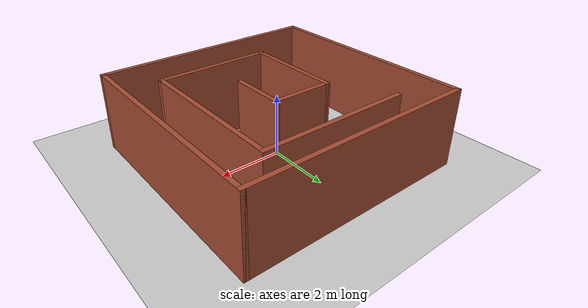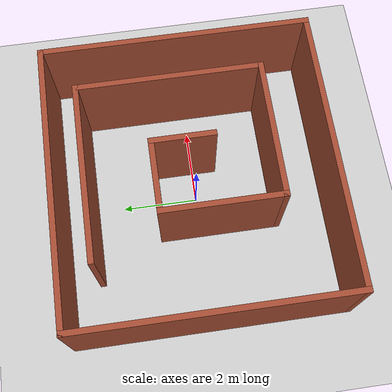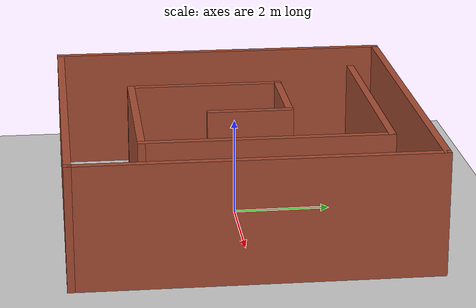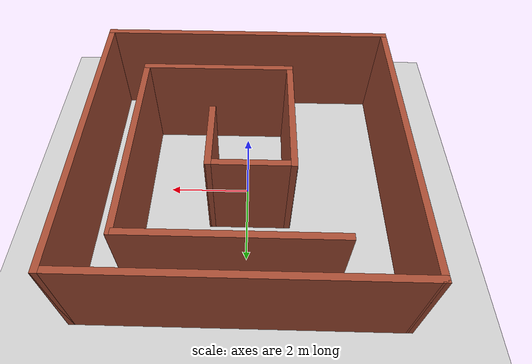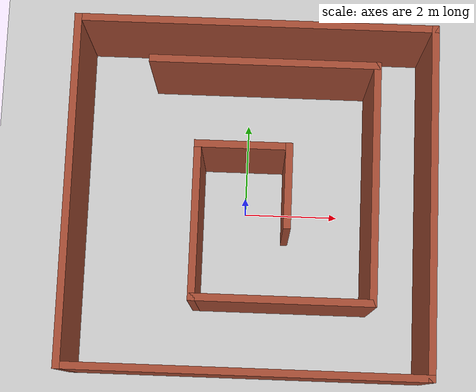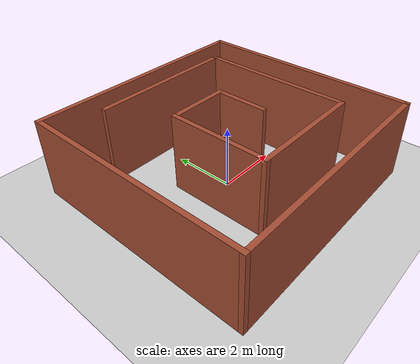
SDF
<sdf version="1.7">
 <world name="default">
  <light name="sun" type="directional">
   <pose>0 0 10 0 -0 0</pose>
   <diffuse>0.8 0.8 0.8 1</diffuse>
   <specular>0.2 0.2 0.2 1</specular>
   <attenuation>
    <range>1000</range>
    <constant>0.9</constant>
    <linear>0.01</linear>
    <quadratic>0.001</quadratic>
   </attenuation>
   <direction>-0.5 0.1 -0.9</direction>
   <spot><inner_angle>0</inner_angle><outer_angle>0</outer_angle><falloff>0</falloff></spot>
  </light>
  <model name="ground_plane">
   <static>1</static>
   <link name="link">
    <collision name="collision">
     <geometry><plane><normal>0 0 1</normal><size>100 100</size></plane></geometry>
     <surface>
      <contact><collide_bitmask>65535</collide_bitmask></contact>
      <friction><ode><mu>100</mu><mu2>50</mu2></ode></friction>
     </surface>
    </collision>
    <visual name="visual">
     <cast_shadows>0</cast_shadows>
     <geometry><plane><normal>0 0 1</normal><size>100 100</size></plane></geometry>
     <material>
      <script><uri>file://media/materials/scripts/gazebo.material</uri><name>Gazebo/Grey</name></script>
     </material>
    </visual>
   </link>
  </model>
  <gravity>0 0 -9.8</gravity>
  <magnetic_field>6e-06 2.3e-05 -4.2e-05</magnetic_field>
  <atmosphere type="adiabatic"/>
  <physics type="ode">
   <max_step_size>0.001</max_step_size>
   <real_time_factor>1</real_time_factor>
   <real_time_update_rate>1000</real_time_update_rate>
  </physics>
  <scene><ambient>0.4 0.4 0.4 1</ambient><background>0.7 0.7 0.7 1</background><shadows>1</shadows></scene>
  <spherical_coordinates>
   <surface_model>EARTH_WGS84</surface_model>
   <latitude_deg>0</latitude_deg>
   <longitude_deg>0</longitude_deg>
   <elevation>0</elevation>
   <heading_deg>0</heading_deg>
  </spherical_coordinates>
  <model name="m2">
   <pose>0.107942 0.050681 0 0 -0 0</pose>
   <link name="Wall_0">
    <collision name="Wall_0_Collision">
     <geometry><box><size>7.5 0.15 2.5</size></box></geometry>
     <pose>0 0 1.25 0 -0 0</pose>
    </collision>
    <visual name="Wall_0_Visual">
     <pose>0 0 1.25 0 -0 0</pose>
     <geometry><box><size>7.5 0.15 2.5</size></box></geometry>
     <material>
      <script><uri>file://media/materials/scripts/gazebo.material</uri><name>Gazebo/Bricks</name></script>
      <ambient>1 1 1 1</ambient>
     </material>
     <meta><layer>0</layer></meta>
    </visual>
    <pose>-0 3.55 0 0 -0 0</pose>
   </link>
   <link name="Wall_1">
    <collision name="Wall_1_Collision">
     <geometry><box><size>7.25 0.15 2.5</size></box></geometry>
     <pose>0 0 1.25 0 -0 0</pose>
    </collision>
    <visual name="Wall_1_Visual">
     <pose>0 0 1.25 0 -0 0</pose>
     <geometry><box><size>7.25 0.15 2.5</size></box></geometry>
     <material>
      <script><uri>file://media/materials/scripts/gazebo.material</uri><name>Gazebo/Bricks</name></script>
      <ambient>1 1 1 1</ambient>
     </material>
     <meta><layer>0</layer></meta>
    </visual>
    <pose>3.675 0 0 0 -0 -1.5708</pose>
   </link>
   <link name="Wall_10">
    <collision name="Wall_10_Collision">
     <geometry><box><size>1.75 0.15 2.5</size></box></geometry>
     <pose>0 0 1.25 0 -0 0</pose>
    </collision>
    <visual name="Wall_10_Visual">
     <pose>0 0 1.25 0 -0 0</pose>
     <geometry><box><size>1.75 0.15 2.5</size></box></geometry>
     <material>
      <script><uri>file://media/materials/scripts/gazebo.material</uri><name>Gazebo/Bricks</name></script>
      <ambient>1 1 1 1</ambient>
     </material>
     <meta><layer>0</layer></meta>
    </visual>
    <pose>0.749106 0.177967 0 0 -0 -1.5708</pose>
   </link>
   <link name="Wall_2">
    <collision name="Wall_2_Collision">
     <geometry><box><size>7.5 0.15 2.5</size></box></geometry>
     <pose>0 0 1.25 0 -0 0</pose>
    </collision>
    <visual name="Wall_2_Visual">
     <pose>0 0 1.25 0 -0 0</pose>
     <geometry><box><size>7.5 0.15 2.5</size></box></geometry>
     <material>
      <script><uri>file://media/materials/scripts/gazebo.material</uri><name>Gazebo/Bricks</name></script>
      <ambient>1 1 1 1</ambient>
     </material>
     <meta><layer>0</layer></meta>
    </visual>
    <pose>-0 -3.55 0 0 -0 3.14159</pose>
   </link>
   <link name="Wall_3">
    <collision name="Wall_3_Collision">
     <geometry><box><size>7.25 0.15 2.5</size></box></geometry>
     <pose>0 0 1.25 0 -0 0</pose>
    </collision>
    <visual name="Wall_3_Visual">
     <pose>0 0 1.25 0 -0 0</pose>
     <geometry><box><size>7.25 0.15 2.5</size></box></geometry>
     <material>
      <script><uri>file://media/materials/scripts/gazebo.material</uri><name>Gazebo/Bricks</name></script>
      <ambient>1 1 1 1</ambient>
     </material>
     <meta><layer>0</layer></meta>
    </visual>
    <pose>-3.675 0 0 0 -0 1.5708</pose>
   </link>
   <link name="Wall_5">
    <collision name="Wall_5_Collision">
     <geometry><box><size>4.75 0.15 2.5</size></box></geometry>
     <pose>0 0 1.25 0 -0 0</pose>
    </collision>
    <visual name="Wall_5_Visual">
     <pose>0 0 1.25 0 -0 0</pose>
     <geometry><box><size>4.75 0.15 2.5</size></box></geometry>
     <material>
      <script><uri>file://media/materials/scripts/gazebo.material</uri><name>Gazebo/Bricks</name></script>
      <ambient>1 1 1 1</ambient>
     </material>
     <meta><layer>0</layer></meta>
    </visual>
    <pose>0.199106 2.72797 0 0 -0 0</pose>
   </link>
   <link name="Wall_6">
    <collision name="Wall_6_Collision">
     <geometry><box><size>5 0.15 2.5</size></box></geometry>
     <pose>0 0 1.25 0 -0 0</pose>
    </collision>
    <visual name="Wall_6_Visual">
     <pose>0 0 1.25 0 -0 0</pose>
     <geometry><box><size>5 0.15 2.5</size></box></geometry>
     <material>
      <script><uri>file://media/materials/scripts/gazebo.material</uri><name>Gazebo/Bricks</name></script>
      <ambient>1 1 1 1</ambient>
     </material>
     <meta><layer>0</layer></meta>
    </visual>
    <pose>2.49911 0.302967 0 0 -0 -1.5708</pose>
   </link>
   <link name="Wall_7">
    <collision name="Wall_7_Collision">
     <geometry><box><size>3.75 0.15 2.5</size></box></geometry>
     <pose>0 0 1.25 0 -0 0</pose>
    </collision>
    <visual name="Wall_7_Visual">
     <pose>0 0 1.25 0 -0 0</pose>
     <geometry><box><size>3.75 0.15 2.5</size></box></geometry>
     <material>
      <script><uri>file://media/materials/scripts/gazebo.material</uri><name>Gazebo/Bricks</name></script>
      <ambient>1 1 1 1</ambient>
     </material>
     <meta><layer>0</layer></meta>
    </visual>
    <pose>0.699106 -2.12203 0 0 -0 3.14159</pose>
   </link>
   <link name="Wall_8">
    <collision name="Wall_8_Collision">
     <geometry><box><size>3.25 0.15 2.5</size></box></geometry>
     <pose>0 0 1.25 0 -0 0</pose>
    </collision>
    <visual name="Wall_8_Visual">
     <pose>0 0 1.25 0 -0 0</pose>
     <geometry><box><size>3.25 0.15 2.5</size></box></geometry>
     <material>
      <script><uri>file://media/materials/scripts/gazebo.material</uri><name>Gazebo/Bricks</name></script>
      <ambient>1 1 1 1</ambient>
     </material>
     <meta><layer>0</layer></meta>
    </visual>
    <pose>-1.10089 -0.572033 0 0 -0 1.5708</pose>
   </link>
   <link name="Wall_9">
    <collision name="Wall_9_Collision">
     <geometry><box><size>2 0.15 2.5</size></box></geometry>
     <pose>0 0 1.25 0 -0 0</pose>
    </collision>
    <visual name="Wall_9_Visual">
     <pose>0 0 1.25 0 -0 0</pose>
     <geometry><box><size>2 0.15 2.5</size></box></geometry>
     <material>
      <script><uri>file://media/materials/scripts/gazebo.material</uri><name>Gazebo/Bricks</name></script>
      <ambient>1 1 1 1</ambient>
     </material>
     <meta><layer>0</layer></meta>
    </visual>
    <pose>-0.175894 0.977967 0 0 -0 0</pose>
   </link>
   <static>1</static>
  </model>
 </world>
</sdf>
